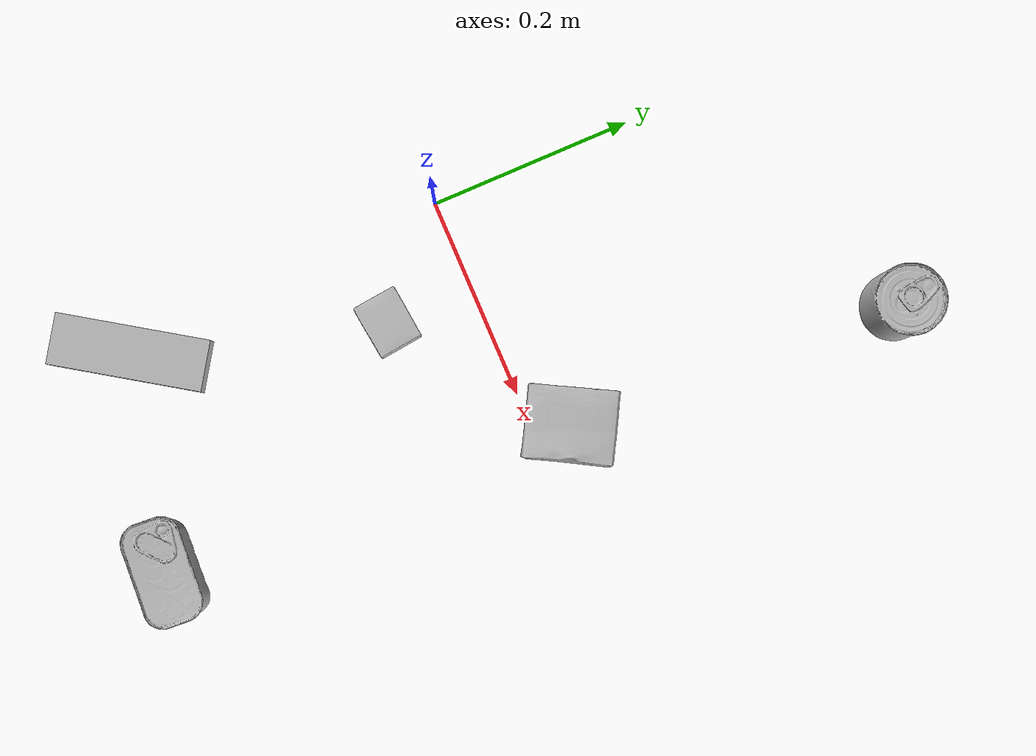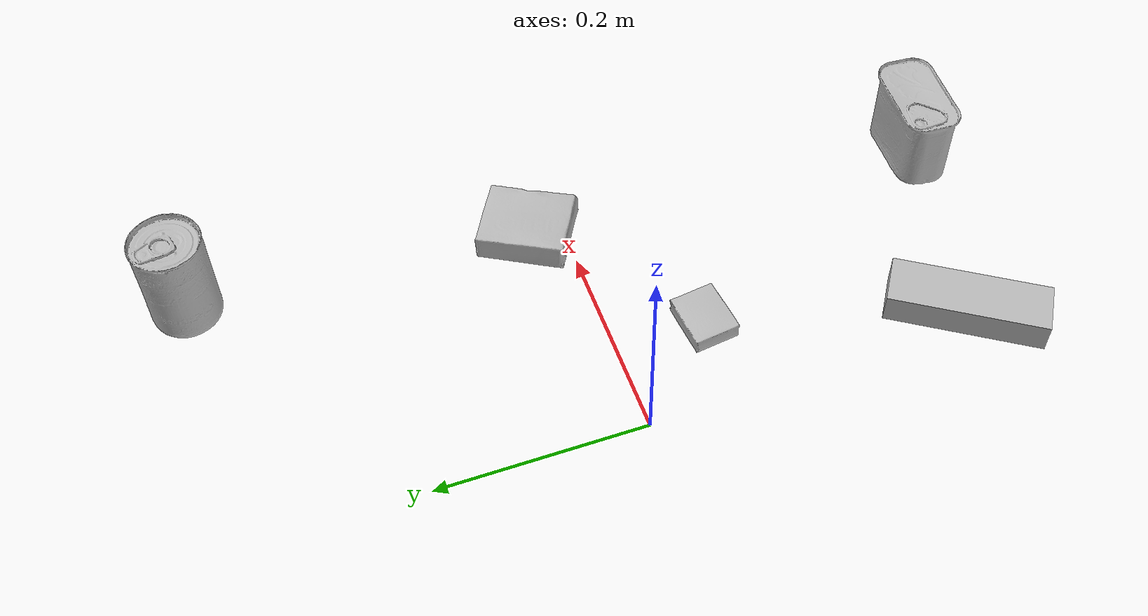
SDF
<sdf version="1.4">
  <world name="default">
    <light name="light1" type="point">
      <pose>0 0 1 0 0 0</pose>
      <diffuse>3 3 3 1</diffuse>
      <specular>3 3 3 1</specular>
    </light>
    <light name="light2" type="point">
      <pose>0 0.5 2 0 0 0</pose>
      <diffuse>1 1 1 1</diffuse>
      <specular>1 1 1 1</specular>
    </light>
    <light name="light3" type="point">
      <pose>0 0.5 2 0 0 0</pose>
      <diffuse>3 3 3 1</diffuse>
      <specular>3 3 3 1</specular>
    </light>
    <scene>
      <ambient>0.7 0.7 0.7</ambient>
    </scene>
    <model name="box1">
      <link name="link_box1">
        <collision name="default">
          <geometry>
            <mesh>
              <uri>model://pudding_box/collision_meshes/collision.obj</uri>
              <scale>0.5 0.5 0.5</scale>
            </mesh>
          </geometry>
          <surface>
            <friction>
              <ode>
                <mu>0.5</mu>
                <mu2>0.5</mu2>
              </ode>
            </friction>
          <contact>
        <ode>
            <max_vel>0</max_vel>
            <min_depth>0.0001</min_depth>
            <kp>1e8</kp>
        </ode>
    </contact></surface>
        </collision>
        <visual name="default">
          <geometry>
            <mesh>
              <uri>model://pudding_box/visual_meshes/visual.dae</uri>
              <scale>0.5 0.5 0.5</scale>
            </mesh>
          </geometry>
        </visual>
        <inertial>
          <mass>0.040720973163843155</mass>
          <pose>0.00024474109522998333 0.0004033942532259971 -0.0002594413817860186 0.005213101818388509 -0.006603799159636292 0.020079815843731863</pose>
          <inertia>
            <ixx>1.1508242e-05</ixx>
            <iyy>7.742825e-06</iyy>
            <izz>1.6994923e-05</izz>
            <ixy>0</ixy>
            <ixz>0</ixz>
            <iyz>0</iyz>
          </inertia>
        </inertial>
      </link>
      <pose>0.08822096139192581 -0.08728960156440735 0.009862905368208885 0.022348497819309195 -0.011391733534101667 -1.4577518459412322</pose>
    </model>
    <model name="box2">
      <link name="link_box2">
        <collision name="default">
          <geometry>
            <mesh>
              <uri>model://jenga/collision_meshes/collision.obj</uri>
              <scale>1.0 1.0 1.0</scale>
            </mesh>
          </geometry>
          <surface>
            <friction>
              <ode>
                <mu>0.5</mu>
                <mu2>0.5</mu2>
              </ode>
            </friction>
          <contact>
        <ode>
            <max_vel>0</max_vel>
            <min_depth>0.0001</min_depth>
            <kp>1e8</kp>
        </ode>
    </contact></surface>
        </collision>
        <visual name="default">
          <geometry>
            <mesh>
              <uri>model://jenga/visual_meshes/visual.dae</uri>
              <scale>1.0 1.0 1.0</scale>
            </mesh>
          </geometry>
        </visual>
        <inertial>
          <mass>0.2260044664144516</mass>
          <pose>-2.502855807051674e-07 -0.00010250010382151231 -4.0923401684267446e-05 0.0 -7.34215461761844e-07 0.0</pose>
          <inertia>
            <ixx>6.254092e-05</ixx>
            <iyy>0.00042377558</iyy>
            <izz>0.00045241645</izz>
            <ixy>0</ixy>
            <ixz>0</ixz>
            <iyz>0</iyz>
          </inertia>
        </inertial>
      </link>
      <pose>0.018244601786136627 -0.32475966215133667 0.014999995008111 4.9312436700560945e-09 2.2660903604650732e-10 0.9867863351684217</pose>
    </model>
    <model name="box3">
      <link name="link_box3">
        <collision name="default">
          <geometry>
            <mesh>
              <uri>model://gelatin_box/collision_meshes/collision.obj</uri>
              <scale>1.0 1.0 1.0</scale>
            </mesh>
          </geometry>
          <surface>
            <friction>
              <ode>
                <mu>0.5</mu>
                <mu2>0.5</mu2>
              </ode>
            </friction>
          <contact>
        <ode>
            <max_vel>0</max_vel>
            <min_depth>0.0001</min_depth>
            <kp>1e8</kp>
        </ode>
    </contact></surface>
        </collision>
        <visual name="default">
          <geometry>
            <mesh>
              <uri>model://gelatin_box/visual_meshes/visual.dae</uri>
              <scale>1.0 1.0 1.0</scale>
            </mesh>
          </geometry>
        </visual>
        <inertial>
          <mass>0.21249663829803467</mass>
          <pose>0.000431961816502735 0.00011156871914863586 -0.0003640321083366871 -0.0010503720865678746 -0.004755816824885886 0.016440563196489677</pose>
          <inertia>
            <ixx>0.00015000527</ixx>
            <iyy>0.000107147986</iyy>
            <izz>0.00022834145</izz>
            <ixy>0</ixy>
            <ixz>0</ixz>
            <iyz>0</iyz>
          </inertia>
        </inertial>
      </link>
      <pose>0.24750792980194092 0.03492364659905434 0.015168318524956703 0.005597470828160074 -0.007304528697472132 -0.5121348811899711</pose>
    </model>
    <model name="can1">
      <link name="link_can1">
        <collision name="default">
          <geometry>
            <mesh>
              <uri>model://tomato_soup_can/collision_meshes/collision.obj</uri>
              <scale>1.0 1.0 1.0</scale>
            </mesh>
          </geometry>
          <surface>
            <friction>
              <ode>
                <mu>0.5</mu>
                <mu2>0.5</mu2>
              </ode>
            </friction>
          <contact>
        <ode>
            <max_vel>0</max_vel>
            <min_depth>0.0001</min_depth>
            <kp>1e8</kp>
        </ode>
    </contact></surface>
        </collision>
        <visual name="default">
          <geometry>
            <mesh>
              <uri>model://tomato_soup_can/visual_meshes/visual.dae</uri>
              <scale>1.0 1.0 1.0</scale>
            </mesh>
          </geometry>
        </visual>
        <inertial>
          <mass>0.23179346323013306</mass>
          <pose>0.00012652273289859295 0.00010805525380419567 -0.0017973976209759712 0.00702006934742656 0.00042299045868732465 -0.009902874376192201</pose>
          <inertia>
            <ixx>0.0002541419</ixx>
            <iyy>0.00025267305</iyy>
            <izz>0.00013171937</izz>
            <ixy>0</ixy>
            <ixz>0</ixz>
            <iyz>0</iyz>
          </inertia>
        </inertial>
      </link>
      <pose>0.26558995246887207 0.3656329810619354 0.05127401649951935 -6.710969434528104e-07 -8.866139675103318e-07 3.1064519598712694</pose>
    </model>
    <model name="can2">
      <link name="link_can2">
        <collision name="default">
          <geometry>
            <mesh>
              <uri>model://potted_meat_can/collision_meshes/collision.obj</uri>
              <scale>1.0 1.0 1.0</scale>
            </mesh>
          </geometry>
          <surface>
            <friction>
              <ode>
                <mu>0.5</mu>
                <mu2>0.5</mu2>
              </ode>
            </friction>
          <contact>
        <ode>
            <max_vel>0</max_vel>
            <min_depth>0.0001</min_depth>
            <kp>1e8</kp>
        </ode>
    </contact></surface>
        </collision>
        <visual name="default">
          <geometry>
            <mesh>
              <uri>model://potted_meat_can/visual_meshes/visual.dae</uri>
              <scale>1.0 1.0 1.0</scale>
            </mesh>
          </geometry>
        </visual>
        <inertial>
          <mass>0.3195023536682129</mass>
          <pose>0.00022888148669153452 -5.98910846747458e-05 -0.0006367437308654189 -0.028093352727545092 -0.0072326048209280834 0.015406269022640915</pose>
          <inertia>
            <ixx>0.00041100648</ixx>
            <iyy>0.0002497176</iyy>
            <izz>0.00029892896</izz>
            <ixy>0</ixy>
            <ixz>0</ixz>
            <iyz>0</iyz>
          </inertia>
        </inertial>
      </link>
      <pose>0.22477099299430847 -0.3690089285373688 0.04212800785899162 -6.154096521510346e-08 -4.249404569284724e-07 -1.6385925083655557</pose>
    </model>
  <physics type="ode">
      <max_contacts>50</max_contacts>
      <ode>
        <solver>
          <type>quick</type>
          <iters>75</iters>
        </solver>
        <constraints>
          <contact_max_correcting_vel>0</contact_max_correcting_vel>
          <contact_surface_layer>0</contact_surface_layer>
        </constraints>
      </ode>
    </physics></world>
</sdf>
